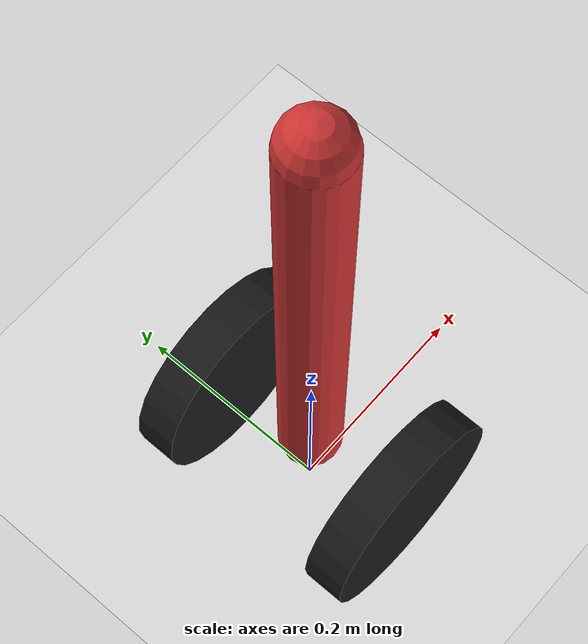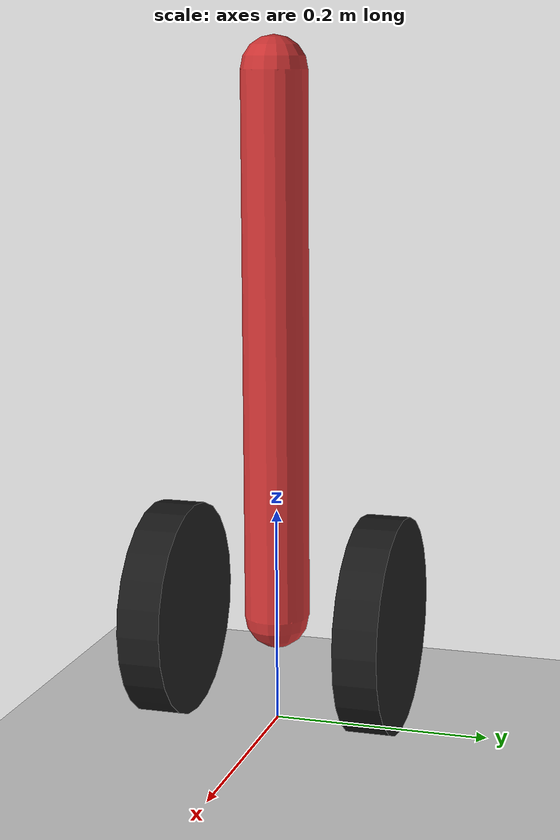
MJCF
<mujoco model="segway">
  <option gravity="0 0 -9.81" timestep="0.001"/>

  <asset>
    <texture type="skybox" builtin="gradient"
             rgb1="0.9 0.9 0.9" rgb2="0.8 0.8 0.8"
             width="512" height="512"/>
    <texture name="checker" type="2d" builtin="checker"
             rgb1="0.8 0.8 0.8" rgb2="0.95 0.95 0.95"
             width="512" height="512"/>
    <material name="matplane" texture="checker" texrepeat="1 1"/>
  </asset>

  <worldbody>
    <!-- Ground -->
    <geom type="plane" pos="0 0 0" size="10 10 0.1" material="matplane"/>

    <!-- Segway Base (The Wheel Axis Frame) -->
    <!-- Modeled as a sliding base (x-motion) representing the wheel contact point -->
    <body name="base" pos="0 0 0.1">
      <!-- Total Mass M = Mass_chassis_base + 2 * Mass_wheel -->
      <!-- We assume the base body represents the AXLE and WHEELS -->
      <inertial pos="0 0 0"
                mass="1.864"
                diaginertia="0.02 0.02 0.02"/>

      <!-- Linear control joint (Friction estimated) -->
      <joint name="slide"
             type="slide"
             axis="1 0 0"
             damping="0.05"
             limited="true"
             range="-5 5"/>

      <!-- Visual Wheels -->
      <body pos="0 0.1 0">
        <geom type="cylinder" size="0.1 0.02" euler="90 0 0" rgba="0.1 0.1 0.1 1"/>
      </body>
      <body pos="0 -0.1 0">
        <geom type="cylinder" size="0.1 0.02" euler="90 0 0" rgba="0.1 0.1 0.1 1"/>
      </body>

      <!-- Pendulum (Chassis) -->
      <body name="pendulum" pos="0 0 0.0">
         <!-- COM is 0.4m above axle -->
        <inertial pos="0 0 0.4"
                  mass="5.0"
                  diaginertia="0.2 0.2 0.01"/>

        <joint name="pend_hinge"
               type="hinge"
               axis="0 1 0"
               damping="0.2"/>

        <geom type="capsule"
              fromto="0 0 0 0 0 0.5"
              size="0.03"
              rgba="0.8 0.2 0.2 1"/>

        <!-- (Removed the blue box 'head' to avoid confusion) -->
      </body>
    </body>
  </worldbody>

  <actuator>
    <!-- Actuator 1: Traction Force (F = tau/r) -->
    <general name="wheel_drive"
             joint="slide"
             gear="1"
             ctrllimited="true"
             ctrlrange="-500 500"/>

    <!-- Actuator 2: Reaction Torque (-tau) -->
    <general name="reaction_torque"
             joint="pend_hinge"
             gear="1"
             ctrllimited="true"
             ctrlrange="-100 100"/>
  </actuator>

  <sensor>
    <jointpos joint="slide"/>
    <jointvel joint="slide"/>
    <jointpos joint="pend_hinge"/>
    <jointvel joint="pend_hinge"/>
  </sensor>
</mujoco>
